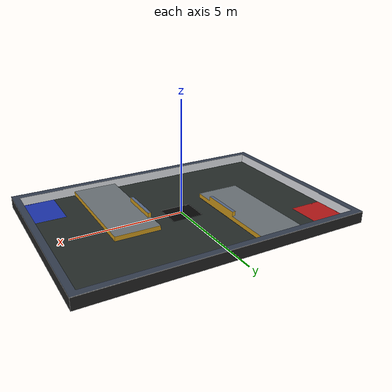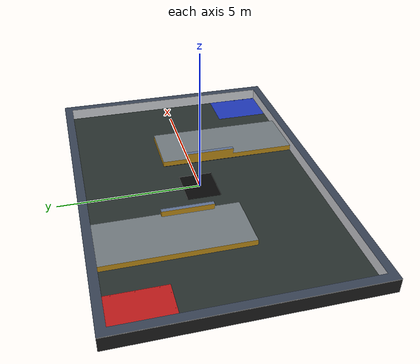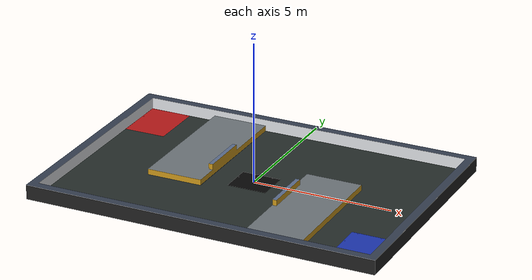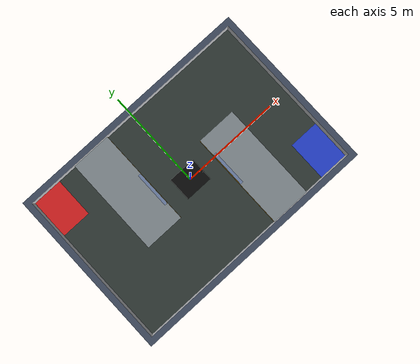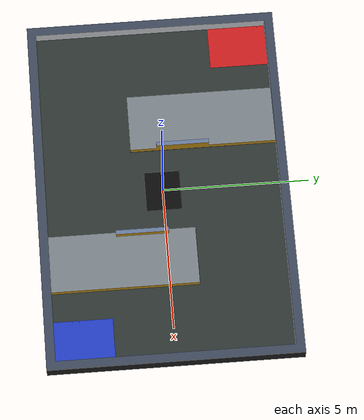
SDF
<?xml version='1.0' encoding='utf-8'?>
<sdf version='1.7'>
  <world name='default'>

    <gui fullscreen='0'>
      <plugin filename='MinimalScene' name='3D View'>
        <gz-gui>
          <title>3D View</title>
          <property type='bool' key='showTitleBar'>false</property>
          <property type='string' key='state'>docked</property>
        </gz-gui>
        <engine>ogre2</engine>
        <scene>scene</scene>
        <ambient_light>0.4 0.4 0.4</ambient_light>
        <background_color>0.8 0.8 0.8</background_color>
        <camera_pose>0 0 14 0 1.57 1.57</camera_pose>
      </plugin>

      <!-- 场景管理器：将仿真状态同步到渲染场景 -->
      <plugin filename='GzSceneManager' name='Scene Manager'>
        <gz-gui>
          <property type='bool' key='showTitleBar'>false</property>
          <property type='string' key='state'>docked</property>
        </gz-gui>
      </plugin>

      <!-- 鼠标交互视角控制 -->
      <plugin filename='InteractiveViewControl' name='Interactive view control'>
        <gz-gui>
          <property type='bool' key='showTitleBar'>false</property>
          <property type='string' key='state'>docked</property>
        </gz-gui>
      </plugin>

      <!-- 仿真控制：播放/暂停/步进 -->
      <plugin filename='WorldControl' name='World control'>
        <gz-gui>
          <title>World control</title>
          <property type='bool' key='showTitleBar'>false</property>
          <property type='string' key='state'>floating</property>
          <property type='double' key='x'>0</property>
          <property type='double' key='y'>0</property>
          <property type='double' key='width'>250</property>
          <property type='double' key='height'>50</property>
        </gz-gui>
        <play_pause>true</play_pause>
        <step>true</step>
        <start_paused>false</start_paused>
      </plugin>

      <!-- 仿真统计信息 -->
      <plugin filename='WorldStats' name='World stats'>
        <gz-gui>
          <title>World stats</title>
          <property type='bool' key='showTitleBar'>false</property>
          <property type='string' key='state'>floating</property>
          <property type='double' key='x'>250</property>
          <property type='double' key='y'>0</property>
          <property type='double' key='width'>250</property>
          <property type='double' key='height'>50</property>
        </gz-gui>
        <sim_time>true</sim_time>
        <real_time>true</real_time>
        <real_time_factor>true</real_time_factor>
        <iterations>false</iterations>
      </plugin>

      <!-- 实体树：左侧列出 world 内所有 model/link，点击即选中 -->
      <plugin filename='EntityTree' name='Entity tree'>
        <gz-gui>
          <title>Entity tree</title>
          <property type='string' key='state'>docked</property>
        </gz-gui>
      </plugin>

      <!-- 组件检查器：显示选中实体的位姿、质量、惯量等属性 -->
      <plugin filename='ComponentInspector' name='Component inspector'>
        <gz-gui>
          <title>Component inspector</title>
          <property type='string' key='state'>docked</property>
        </gz-gui>
      </plugin>

      <!-- 平移/旋转/缩放操作柄（选中实体后可拖动） -->
      <plugin filename='TransformControl' name='Transform control'>
        <gz-gui>
          <title>Transform control</title>
          <property type='string' key='state'>floating</property>
          <property type='double' key='x'>0</property>
          <property type='double' key='y'>50</property>
          <property type='double' key='width'>250</property>
          <property type='double' key='height'>50</property>
        </gz-gui>
      </plugin>

      <!-- 右键菜单：跟随/移动到/删除实体 -->
      <plugin filename='EntityContextMenuPlugin' name='Entity context menu'>
        <gz-gui>
          <property key='state' type='string'>floating</property>
          <property key='width' type='double'>5</property>
          <property key='height' type='double'>5</property>
          <property key='showTitleBar' type='bool'>false</property>
        </gz-gui>
      </plugin>

      <!-- 视角工具：切换正交/透视、预设视角 -->
      <plugin filename='CameraTracking' name='Camera Tracking'>
        <gz-gui>
          <property key='resizable' type='bool'>false</property>
          <property key='width' type='double'>5</property>
          <property key='height' type='double'>5</property>
          <property key='state' type='string'>floating</property>
          <property key='showTitleBar' type='bool'>false</property>
        </gz-gui>
      </plugin>
    </gui>

    <!-- Global RGL scene manager required to upload meshes to GPU -->
    <plugin name='rgl::RGLServerPluginManager' filename='RGLServerPluginManager'>
      <do_ignore_entities_in_lidar_link>true</do_ignore_entities_in_lidar_link>
    </plugin>

    <!-- Physics -->
    <plugin filename="libgz-sim-physics-system.so" name="gz::sim::systems::Physics">
    </plugin>

    <!-- Forwards simulation state to the GUI -->
    <plugin filename="libgz-sim-scene-broadcaster-system.so" name="gz::sim::systems::SceneBroadcaster">
    </plugin>

    <!-- Processes user commands, like translate and create -->
    <plugin filename="libgz-sim-user-commands-system.so" name="gz::sim::systems::UserCommands">
    </plugin>

    <!-- Generates rendering sensor data -->
    <plugin filename="libgz-sim-sensors-system.so" name="gz::sim::systems::Sensors">
      <render_engine>ogre2</render_engine>
    </plugin>

    <plugin filename="libgz-sim-imu-system.so" name="gz::sim::systems::Imu">
    </plugin>

    <light type='directional' name='direct_light'>
      <visualize>false</visualize>
      <cast_shadows>true</cast_shadows>
      <pose>14.6 7.9 10 0 0 0</pose>
      <diffuse>1.0 1.0 1.0 1</diffuse>
      <specular>0.5 0.5 0.5 1</specular>
      <attenuation>
        <range>1000</range>
        <constant>0.9</constant>
        <linear>0.01</linear>
        <quadratic>0.001</quadratic>
      </attenuation>
      <direction>0 0 -1</direction>
    </light>

    <model name='rmul_2026'>
      <include>
        <uri>model://rmul_2026</uri>
      </include>
      <pose>0.0 0.0 0 0 0 0</pose>
      <static>true</static>
    </model>
  </world>
</sdf>

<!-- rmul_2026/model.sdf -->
<sdf version='1.9'>
  <model name='rmul_2026'>
    <static>true</static>
    <link name='body'>
      <pose>-6.3 -4.3 0.42 -1.57079632679 0 0</pose>
      <self_collide>0</self_collide>
      <kinematic>0</kinematic>
      <gravity>1</gravity>
      <!-- 分区着色: 网格已按结构拆分到 meshes/parts/（scripts/split_field_mesh.py 生成），
           子网格与原 STL 顶点逐一一致; collision 仍用整块 rmul_2026.stl, 物理行为不变 -->
      <visual name='floor'>
        <geometry>
          <mesh>
            <uri>model://rmul_2026/meshes/parts/floor.stl</uri>
            <scale>0.001 0.001 0.001</scale>
          </mesh>
        </geometry>
        <material>
          <ambient>0.10 0.12 0.11 1</ambient>
          <diffuse>0.16 0.19 0.18 1</diffuse>
          <specular>0.01 0.01 0.01 1</specular>
        </material>
      </visual>
      <visual name='platform_top'>
        <geometry>
          <mesh>
            <uri>model://rmul_2026/meshes/parts/platform_top.stl</uri>
            <scale>0.001 0.001 0.001</scale>
          </mesh>
        </geometry>
        <material>
          <ambient>0.23 0.27 0.35 1</ambient>
          <diffuse>0.38 0.45 0.58 1</diffuse>
          <specular>0.01 0.01 0.01 1</specular>
        </material>
      </visual>
      <visual name='mid_top'>
        <geometry>
          <mesh>
            <uri>model://rmul_2026/meshes/parts/mid_top.stl</uri>
            <scale>0.001 0.001 0.001</scale>
          </mesh>
        </geometry>
        <material>
          <ambient>0.27 0.29 0.30 1</ambient>
          <diffuse>0.45 0.48 0.50 1</diffuse>
          <specular>0.01 0.01 0.01 1</specular>
        </material>
      </visual>
      <visual name='walls'>
        <geometry>
          <mesh>
            <uri>model://rmul_2026/meshes/parts/walls.stl</uri>
            <scale>0.001 0.001 0.001</scale>
          </mesh>
        </geometry>
        <material>
          <ambient>0.51 0.52 0.53 1</ambient>
          <diffuse>0.85 0.86 0.88 1</diffuse>
          <specular>0.01 0.01 0.01 1</specular>
        </material>
      </visual>
      <visual name='structure_faces'>
        <geometry>
          <mesh>
            <uri>model://rmul_2026/meshes/parts/structure_faces.stl</uri>
            <scale>0.001 0.001 0.001</scale>
          </mesh>
        </geometry>
        <material>
          <ambient>0.47 0.35 0.06 1</ambient>
          <diffuse>0.78 0.58 0.10 1</diffuse>
          <specular>0.01 0.01 0.01 1</specular>
        </material>
      </visual>
      <visual name='under_platform'>
        <geometry>
          <mesh>
            <uri>model://rmul_2026/meshes/parts/under_platform.stl</uri>
            <scale>0.001 0.001 0.001</scale>
          </mesh>
        </geometry>
        <material>
          <ambient>0.13 0.16 0.20 1</ambient>
          <diffuse>0.22 0.26 0.33 1</diffuse>
          <specular>0.01 0.01 0.01 1</specular>
        </material>
      </visual>
      <visual name='underside'>
        <geometry>
          <mesh>
            <uri>model://rmul_2026/meshes/parts/underside.stl</uri>
            <scale>0.001 0.001 0.001</scale>
          </mesh>
        </geometry>
        <material>
          <ambient>0.07 0.07 0.07 1</ambient>
          <diffuse>0.12 0.12 0.12 1</diffuse>
          <specular>0.01 0.01 0.01 1</specular>
        </material>
      </visual>
      <visual name='bumpers'>
        <geometry>
          <mesh>
            <uri>model://rmul_2026/meshes/parts/bumpers.stl</uri>
            <scale>0.001 0.001 0.001</scale>
          </mesh>
        </geometry>
        <material>
          <ambient>0.55 0.43 0.05 1</ambient>
          <diffuse>0.92 0.72 0.08 1</diffuse>
          <specular>0.01 0.01 0.01 1</specular>
        </material>
      </visual>
      <!-- logo 凸起已移除(scripts/flatten_logo_marks.py), 改为颜色标识贴片+描边框;
           地面已铲平(scripts/flatten_ground_plane.py): 中央 12mm 岛、四角 20mm 墩台、
           0.5mm 凹坑全部压平到 z=0, 三个标识贴片均贴地板面: 中央黑 / 西北红 / 东南蓝 -->
      <visual name='mark_center'>
        <geometry>
          <mesh>
            <uri>model://rmul_2026/meshes/parts/mark_center.stl</uri>
            <scale>0.001 0.001 0.001</scale>
          </mesh>
        </geometry>
        <material>
          <ambient>0.02 0.02 0.02 1</ambient>
          <diffuse>0.03 0.03 0.03 1</diffuse>
          <specular>0.01 0.01 0.01 1</specular>
        </material>
      </visual>
      <visual name='mark_nw'>
        <geometry>
          <mesh>
            <uri>model://rmul_2026/meshes/parts/mark_nw.stl</uri>
            <scale>0.001 0.001 0.001</scale>
          </mesh>
        </geometry>
        <material>
          <ambient>0.45 0.06 0.06 1</ambient>
          <diffuse>0.75 0.10 0.10 1</diffuse>
          <specular>0.01 0.01 0.01 1</specular>
        </material>
      </visual>
      <visual name='mark_se'>
        <geometry>
          <mesh>
            <uri>model://rmul_2026/meshes/parts/mark_se.stl</uri>
            <scale>0.001 0.001 0.001</scale>
          </mesh>
        </geometry>
        <material>
          <ambient>0.07 0.13 0.43 1</ambient>
          <diffuse>0.12 0.22 0.72 1</diffuse>
          <specular>0.01 0.01 0.01 1</specular>
        </material>
      </visual>
      <collision name='collision'>
        <geometry>
          <mesh>
            <uri>model://rmul_2026/meshes/rmul_2026.stl</uri>
            <scale>0.001 0.001 0.001</scale>
          </mesh>
        </geometry>
      </collision>
    </link>
  </model>
</sdf>
